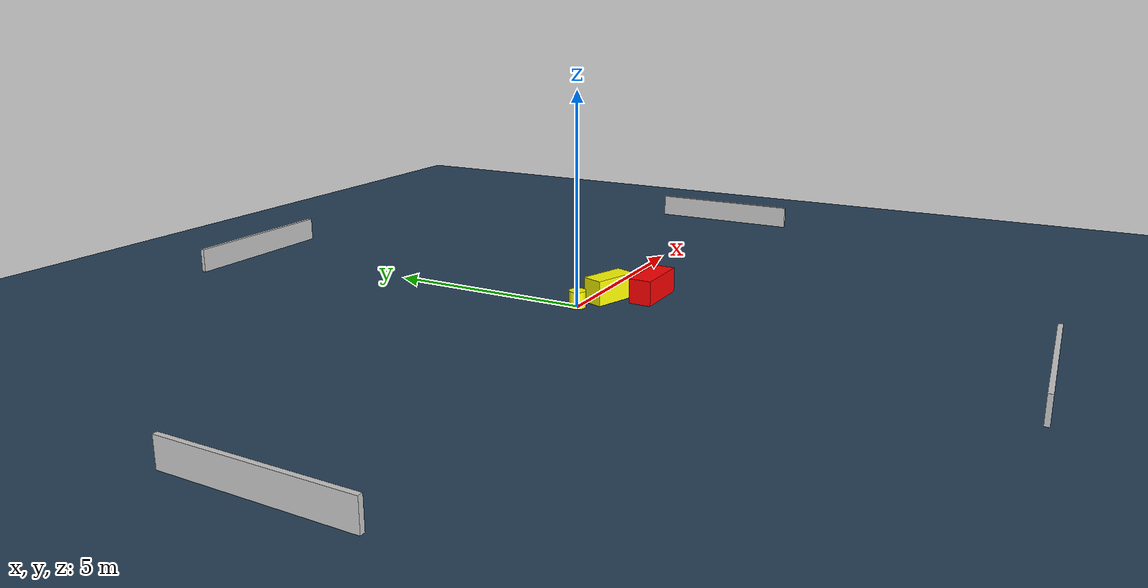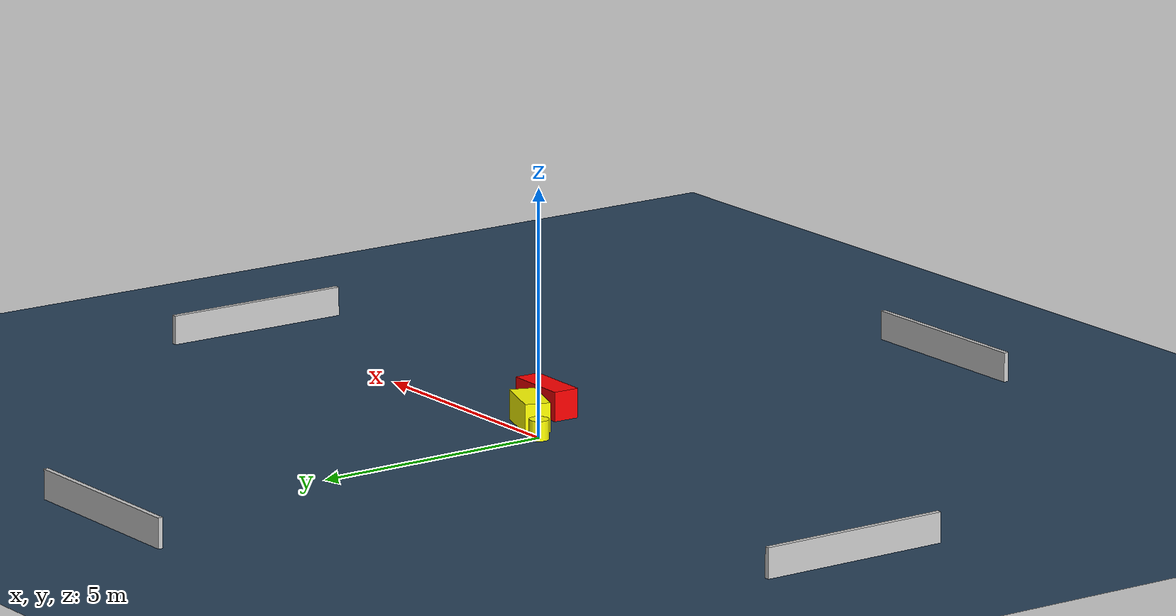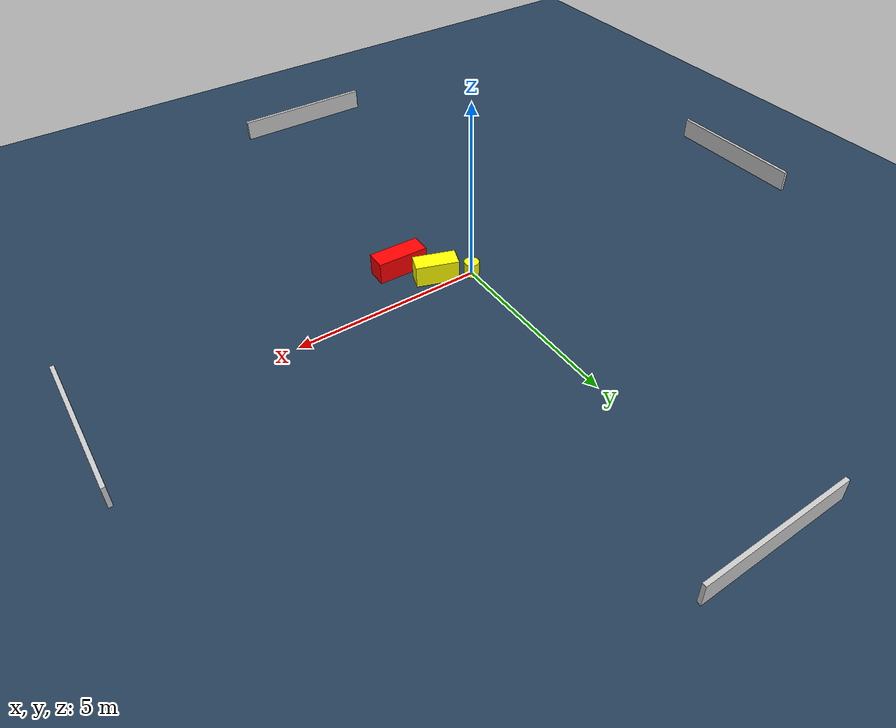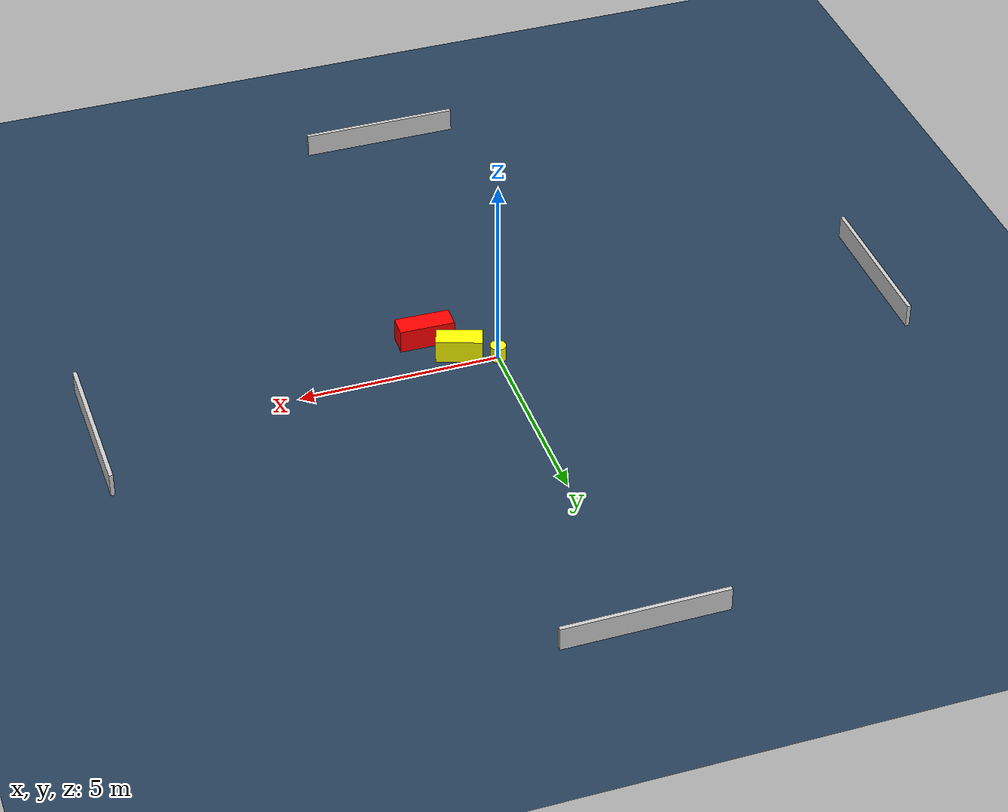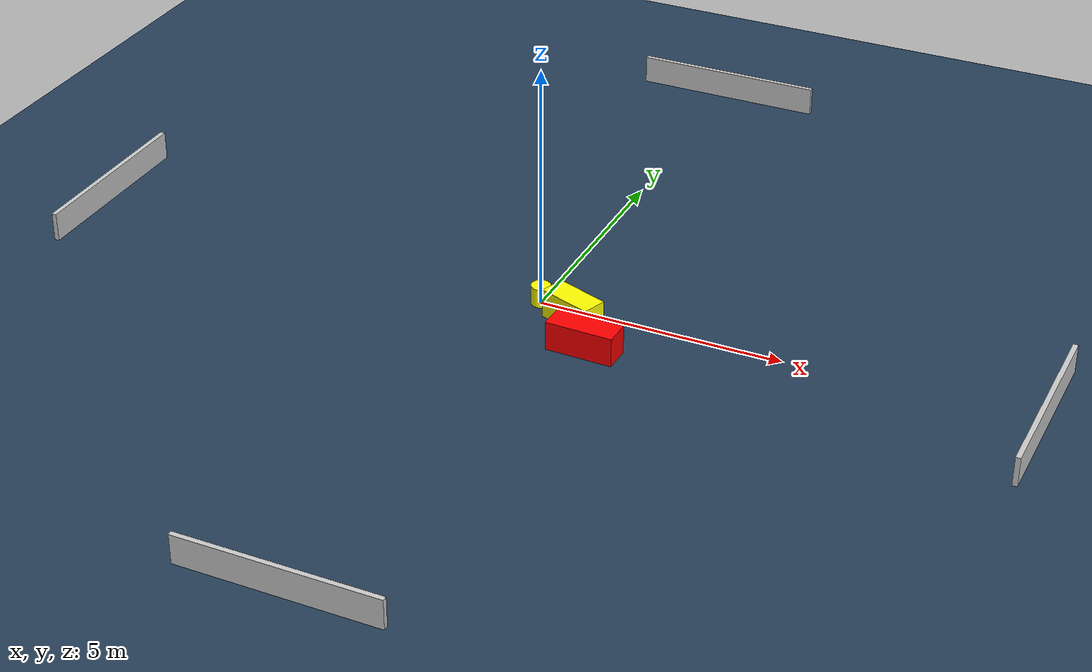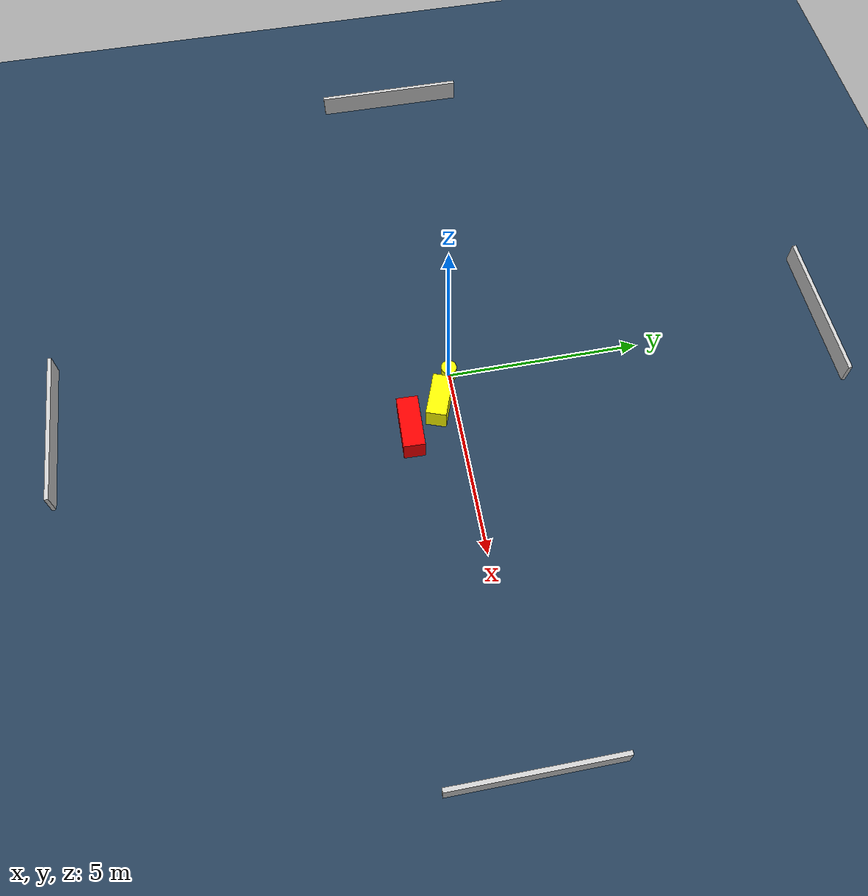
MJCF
<?xml version="1.0" ?>
<mujoco model="generated_environment">
  <option timestep="0.01" integrator="RK4" cone="elliptic"/>
  <default>
    <geom density="1"/>
  </default>
  <asset>
    <texture builtin="gradient" height="3072" name="skybox" rgb1="0.3 0.5 0.7" rgb2="0 0 0" type="skybox" width="512"/>
    <texture builtin="checker" height="300" name="groundplane" rgb1="0.2 0.3 0.4" rgb2="0.1 0.2 0.3" type="2d" width="300"/>
    <material name="groundplane" reflectance="0.2" texrepeat="5 5" texture="groundplane"/>
  </asset>
  <worldbody>
    <light dir="0 0 -1" directional="true" pos="0 0 1.5"/>
    <geom condim="3" friction="0.5 0.005 0.001" material="groundplane" name="floor" pos="0 0 0" size="0 0 0.05" type="plane"/>
    <body name="walls">
      <geom name="wall_1" condim="4" pos="-10.0 0.0 0.3" rgba="0.800000011920929 0.800000011920929 0.800000011920929 1.0" size="0.05 2.0 0.3" type="box"/>
      <geom name="wall_2" condim="4" pos="10.0 0.0 0.3" rgba="0.800000011920929 0.800000011920929 0.800000011920929 1.0" size="0.05 2.0 0.3" type="box"/>
      <geom name="wall_3" condim="4" pos="0.0 -10.0 0.3" rgba="0.800000011920929 0.800000011920929 0.800000011920929 1.0" size="2.0 0.05 0.3" type="box"/>
      <geom name="wall_4" condim="4" pos="0.0 10.0 0.3" rgba="0.800000011920929 0.800000011920929 0.800000011920929 1.0" size="2.0 0.05 0.3" type="box"/>
    </body>
    <body name="robot">
      <joint name="joint_x" type="slide" pos="0 0 0" axis="1 0 0"/>
      <joint name="joint_y" type="slide" pos="0 0 0" axis="0 1 0"/>
      <geom name="robot" type="cylinder" pos="0.0 0.0 0.2" size="0.2 0.2 0.0" mass="5.0" friction="1.0 0.005 0.0001" condim="4" rgba="1.0 1.0 0.0 1.0"/>
    </body>
    <body name="obstacle_1_movable">
      <geom name="obstacle_1_movable" condim="4" pos="0.86546488167481 -0.3932267810941071 0.3" euler="0 0 70.4753248395943" friction="0.0 0.005 0.001" rgba="1.0 1.0 0.0 1.0" size="0.2583507418810334 0.56999415624297 0.3" type="box" mass="0.1"/>
      <joint type="free"/>
    </body>
    <body name="obstacle_2_static">
      <geom name="obstacle_2_static" condim="4" pos="1.485062165045007 -1.2338801875307968 0.3" euler="0 0 268.4782268233984" friction="0.0 0.005 0.001" rgba="1.0 0.0 0.0 1.0" size="0.27168482253666665 0.6857613898480397 0.3" type="box"/>
    </body>
  </worldbody>
  <actuator>
    <motor name="actuator_x" joint="joint_x" gear="1" ctrlrange="-1 1"/>
    <motor name="actuator_y" joint="joint_y" gear="1" ctrlrange="-1 1"/>
  </actuator>
</mujoco>
